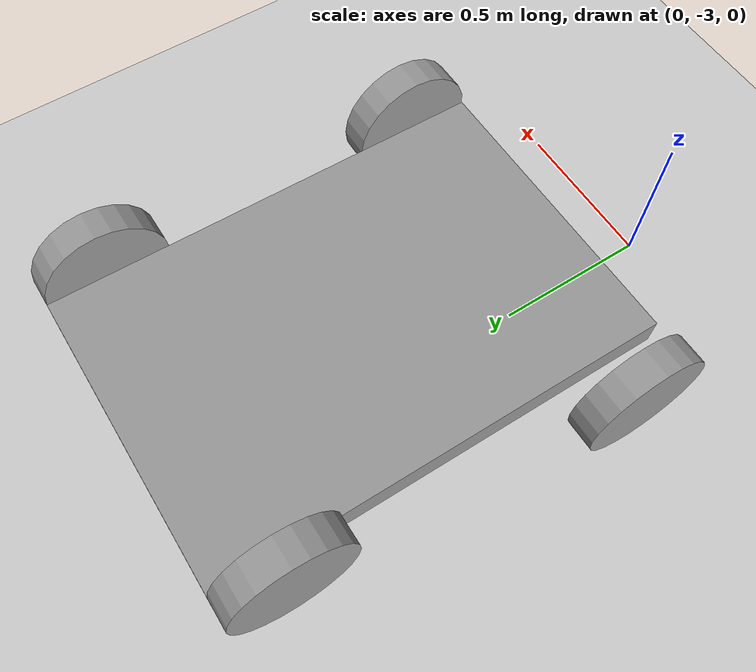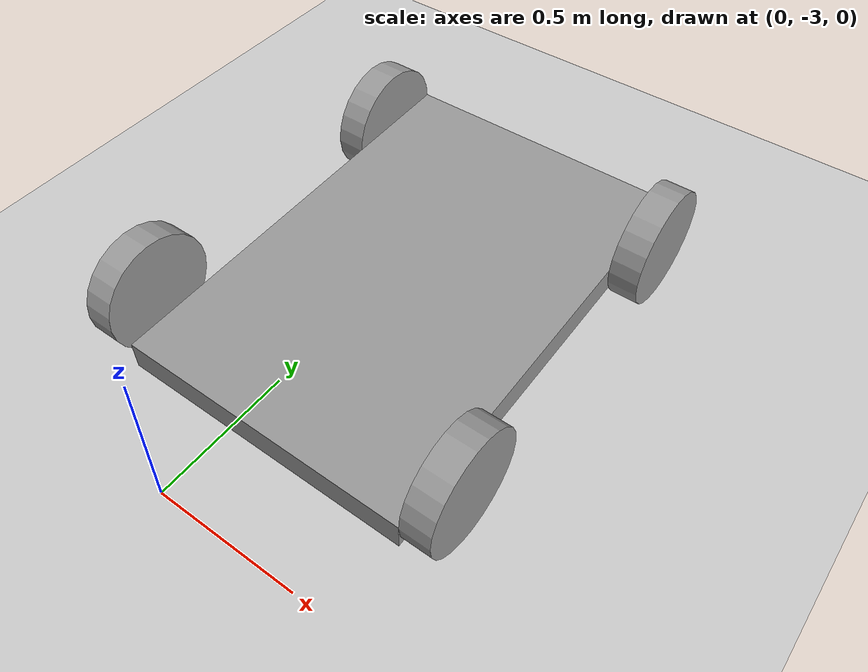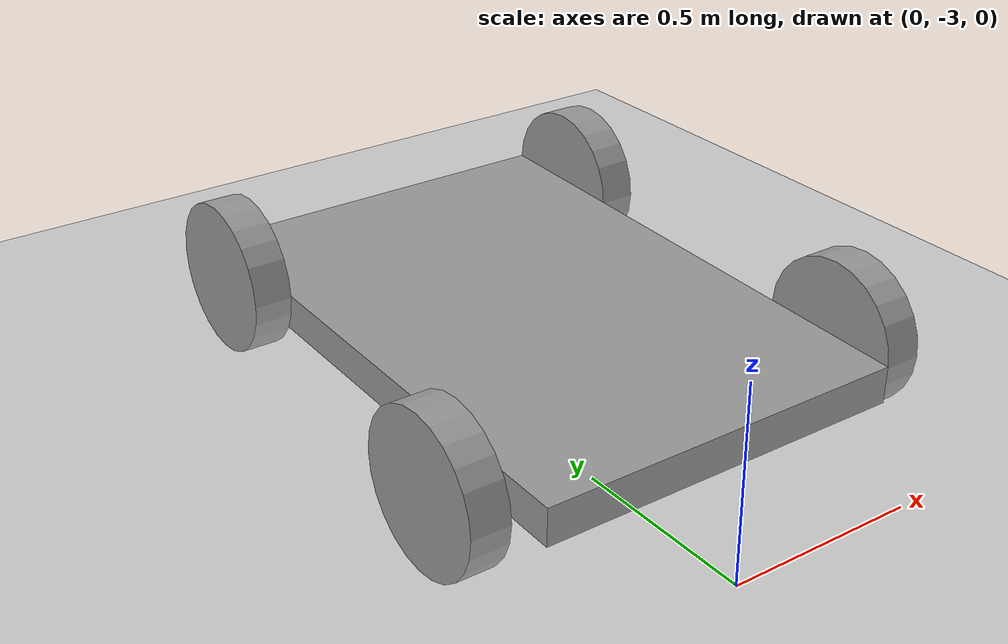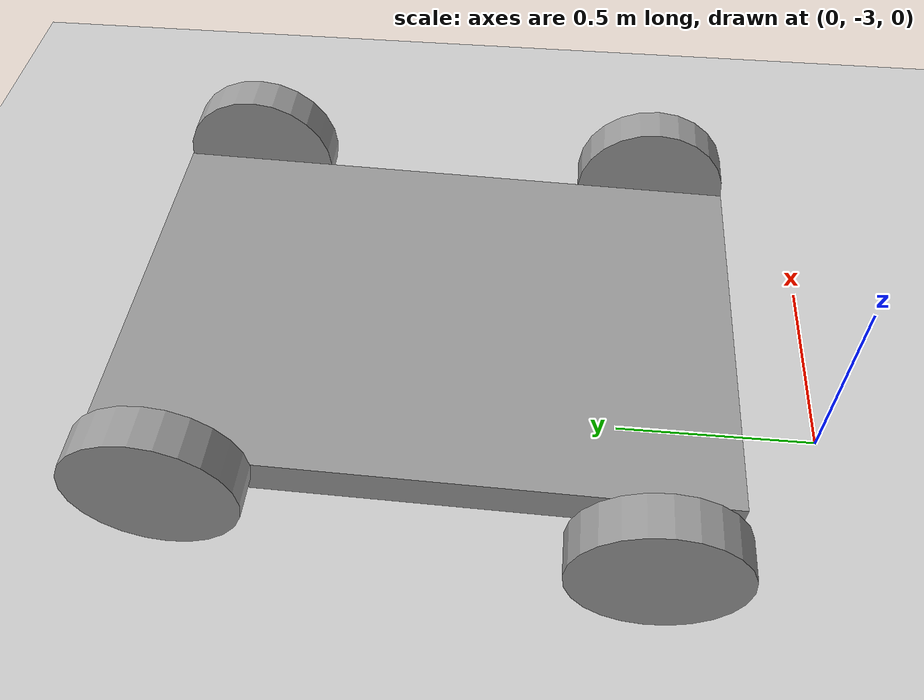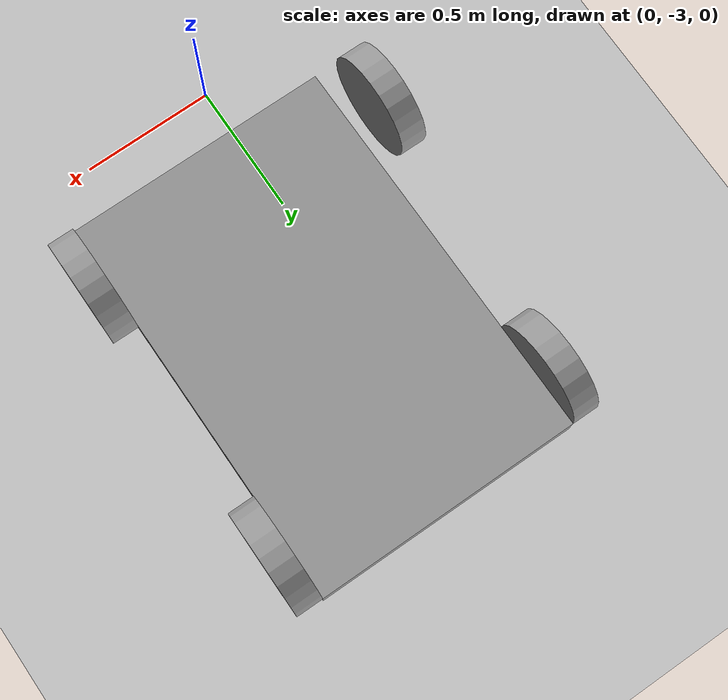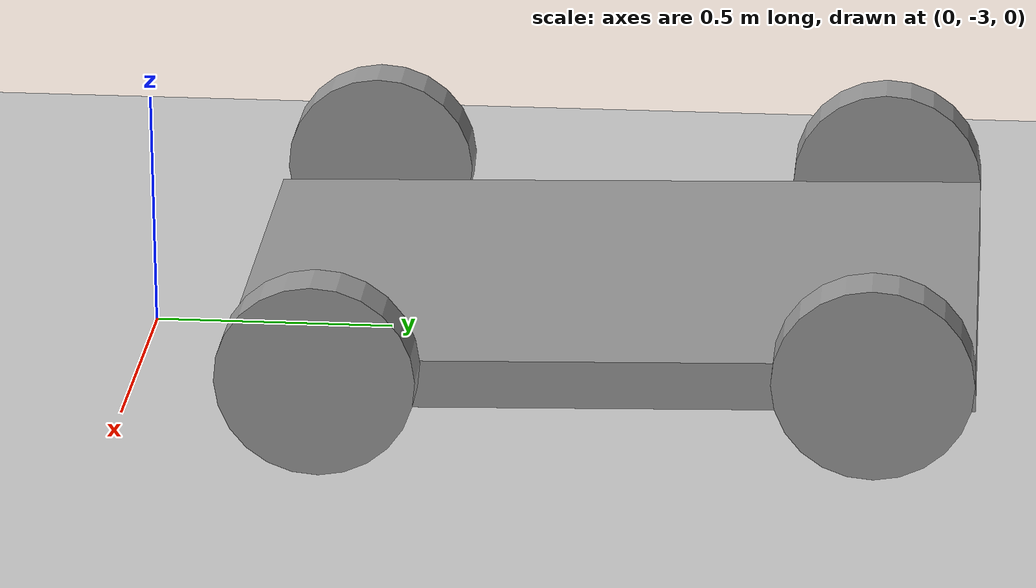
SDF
<sdf version="1.6">
 <world name="default">
  <model name="ground_plane">
   <static>1</static>
   <link name="link">
    <collision name="collision">
     <geometry><plane><normal>0 0 1</normal><size>100 100</size></plane></geometry>
     <surface>
      <contact><collide_bitmask>65535</collide_bitmask></contact>
      <friction><ode><mu>100</mu><mu2>50</mu2></ode></friction>
     </surface>
    </collision>
    <visual name="visual">
     <cast_shadows>0</cast_shadows>
     <geometry><plane><normal>0 0 1</normal><size>100 100</size></plane></geometry>
     <material>
      <script><uri>file://media/materials/scripts/gazebo.material</uri><name>Gazebo/Grey</name></script>
     </material>
    </visual>
   </link>
  </model>
  <model name="myBOt_0">
   <link name="link_0">
    <inertial>
     <mass>1</mass>
     <inertia><ixx>0.145833</ixx><ixy>0</ixy><ixz>0</ixz><iyy>0.145833</iyy><iyz>0</iyz><izz>0.125</izz></inertia>
    </inertial>
    <pose>-0.360453 0.261698 0.045 0 -0 0</pose>
    <visual name="visual">
     <pose>0 0 0 0 1.57 0</pose>
     <geometry><cylinder><radius>0.2</radius><length>0.1</length></cylinder></geometry>
     <material>
      <lighting>1</lighting>
      <script><uri>file://media/materials/scripts/gazebo.material</uri><name>Gazebo/Grey</name></script>
      <shader type="vertex"><normal_map>__default__</normal_map></shader>
      <ambient>0.3 0.3 0.3 1</ambient>
      <diffuse>0.7 0.7 0.7 1</diffuse>
      <specular>0.01 0.01 0.01 1</specular>
      <emissive>0 0 0 1</emissive>
     </material>
    </visual>
    <collision name="collision">
     <pose>0 0 0 0 1.57 0</pose>
     <geometry><cylinder><radius>0.2</radius><length>0.1</length></cylinder></geometry>
     <surface>
      <friction>
       <ode><mu>1</mu><mu2>1</mu2><fdir1>0 0 0</fdir1><slip1>0</slip1><slip2>0</slip2></ode>
       <torsional>
        <coefficient>1</coefficient>
        <patch_radius>0</patch_radius>
        <surface_radius>0</surface_radius>
        <use_patch_radius>1</use_patch_radius>
        <ode><slip>0</slip></ode>
       </torsional>
      </friction>
      <bounce><restitution_coefficient>0</restitution_coefficient><threshold>1e+06</threshold></bounce>
      <contact>
       <collide_without_contact>0</collide_without_contact>
       <collide_without_contact_bitmask>1</collide_without_contact_bitmask>
       <collide_bitmask>1</collide_bitmask>
       <ode>
        <soft_cfm>0</soft_cfm>
        <soft_erp>0.2</soft_erp>
        <kp>1e+13</kp>
        <kd>1</kd>
        <max_vel>0.01</max_vel>
        <min_depth>0</min_depth>
       </ode>
       <bullet>
        <split_impulse>1</split_impulse>
        <split_impulse_penetration_threshold>-0.01</split_impulse_penetration_threshold>
        <soft_cfm>0</soft_cfm>
        <soft_erp>0.2</soft_erp>
        <kp>1e+13</kp>
        <kd>1</kd>
       </bullet>
      </contact>
     </surface>
    </collision>
   </link>
   <link name="link_0_clone">
    <inertial>
     <mass>1</mass>
     <inertia><ixx>0.145833</ixx><ixy>0</ixy><ixz>0</ixz><iyy>0.145833</iyy><iyz>0</iyz><izz>0.125</izz></inertia>
    </inertial>
    <pose>-0.270612 1.3617 0.045 0 -0 0</pose>
    <visual name="visual">
     <pose>0 0 0 0 1.57 0</pose>
     <geometry><cylinder><radius>0.2</radius><length>0.1</length></cylinder></geometry>
     <material>
      <lighting>1</lighting>
      <script><uri>file://media/materials/scripts/gazebo.material</uri><name>Gazebo/Grey</name></script>
      <shader type="vertex"><normal_map>__default__</normal_map></shader>
      <ambient>0.3 0.3 0.3 1</ambient>
      <diffuse>0.7 0.7 0.7 1</diffuse>
      <specular>0.01 0.01 0.01 1</specular>
      <emissive>0 0 0 1</emissive>
     </material>
    </visual>
    <collision name="collision">
     <pose>0 0 0 0 1.57 0</pose>
     <geometry><cylinder><radius>0.2</radius><length>0.1</length></cylinder></geometry>
     <surface>
      <friction>
       <ode><mu>1</mu><mu2>1</mu2><fdir1>0 0 0</fdir1><slip1>0</slip1><slip2>0</slip2></ode>
       <torsional>
        <coefficient>1</coefficient>
        <patch_radius>0</patch_radius>
        <surface_radius>0</surface_radius>
        <use_patch_radius>1</use_patch_radius>
        <ode><slip>0</slip></ode>
       </torsional>
      </friction>
      <bounce><restitution_coefficient>0</restitution_coefficient><threshold>1e+06</threshold></bounce>
      <contact>
       <collide_without_contact>0</collide_without_contact>
       <collide_without_contact_bitmask>1</collide_without_contact_bitmask>
       <collide_bitmask>1</collide_bitmask>
       <ode>
        <soft_cfm>0</soft_cfm>
        <soft_erp>0.2</soft_erp>
        <kp>1e+13</kp>
        <kd>1</kd>
        <max_vel>0.01</max_vel>
        <min_depth>0</min_depth>
       </ode>
       <bullet>
        <split_impulse>1</split_impulse>
        <split_impulse_penetration_threshold>-0.01</split_impulse_penetration_threshold>
        <soft_cfm>0</soft_cfm>
        <soft_erp>0.2</soft_erp>
        <kp>1e+13</kp>
        <kd>1</kd>
       </bullet>
      </contact>
     </surface>
    </collision>
   </link>
   <link name="link_0_clone_clone">
    <inertial>
     <mass>1</mass>
     <inertia><ixx>0.145833</ixx><ixy>0</ixy><ixz>0</ixz><iyy>0.145833</iyy><iyz>0</iyz><izz>0.125</izz></inertia>
    </inertial>
    <pose>0.829706 1.3617 0.045 0 -0 0</pose>
    <visual name="visual">
     <pose>0 0 0 0 1.57 0</pose>
     <geometry><cylinder><radius>0.2</radius><length>0.1</length></cylinder></geometry>
     <material>
      <lighting>1</lighting>
      <script><uri>file://media/materials/scripts/gazebo.material</uri><name>Gazebo/Grey</name></script>
      <shader type="vertex"><normal_map>__default__</normal_map></shader>
      <ambient>0.3 0.3 0.3 1</ambient>
      <diffuse>0.7 0.7 0.7 1</diffuse>
      <specular>0.01 0.01 0.01 1</specular>
      <emissive>0 0 0 1</emissive>
     </material>
    </visual>
    <collision name="collision">
     <pose>0 0 0 0 1.57 0</pose>
     <geometry><cylinder><radius>0.2</radius><length>0.1</length></cylinder></geometry>
     <surface>
      <friction>
       <ode><mu>1</mu><mu2>1</mu2><fdir1>0 0 0</fdir1><slip1>0</slip1><slip2>0</slip2></ode>
       <torsional>
        <coefficient>1</coefficient>
        <patch_radius>0</patch_radius>
        <surface_radius>0</surface_radius>
        <use_patch_radius>1</use_patch_radius>
        <ode><slip>0</slip></ode>
       </torsional>
      </friction>
      <bounce><restitution_coefficient>0</restitution_coefficient><threshold>1e+06</threshold></bounce>
      <contact>
       <collide_without_contact>0</collide_without_contact>
       <collide_without_contact_bitmask>1</collide_without_contact_bitmask>
       <collide_bitmask>1</collide_bitmask>
       <ode>
        <soft_cfm>0</soft_cfm>
        <soft_erp>0.2</soft_erp>
        <kp>1e+13</kp>
        <kd>1</kd>
        <max_vel>0.01</max_vel>
        <min_depth>0</min_depth>
       </ode>
       <bullet>
        <split_impulse>1</split_impulse>
        <split_impulse_penetration_threshold>-0.01</split_impulse_penetration_threshold>
        <soft_cfm>0</soft_cfm>
        <soft_erp>0.2</soft_erp>
        <kp>1e+13</kp>
        <kd>1</kd>
       </bullet>
      </contact>
     </surface>
    </collision>
   </link>
   <link name="link_0_clone_clone_clone">
    <inertial>
     <mass>1</mass>
     <inertia><ixx>0.145833</ixx><ixy>0</ixy><ixz>0</ixz><iyy>0.145833</iyy><iyz>0</iyz><izz>0.125</izz></inertia>
    </inertial>
    <pose>0.829706 0.261698 0.045 0 -0 0</pose>
    <visual name="visual">
     <pose>0 0 0 0 1.57 0</pose>
     <geometry><cylinder><radius>0.2</radius><length>0.1</length></cylinder></geometry>
     <material>
      <lighting>1</lighting>
      <script><uri>file://media/materials/scripts/gazebo.material</uri><name>Gazebo/Grey</name></script>
      <shader type="vertex"><normal_map>__default__</normal_map></shader>
      <ambient>0.3 0.3 0.3 1</ambient>
      <diffuse>0.7 0.7 0.7 1</diffuse>
      <specular>0.01 0.01 0.01 1</specular>
      <emissive>0 0 0 1</emissive>
     </material>
    </visual>
    <collision name="collision">
     <pose>0 0 0 0 1.57 0</pose>
     <geometry><cylinder><radius>0.2</radius><length>0.1</length></cylinder></geometry>
     <surface>
      <friction>
       <ode><mu>1</mu><mu2>1</mu2><fdir1>0 0 0</fdir1><slip1>0</slip1><slip2>0</slip2></ode>
       <torsional>
        <coefficient>1</coefficient>
        <patch_radius>0</patch_radius>
        <surface_radius>0</surface_radius>
        <use_patch_radius>1</use_patch_radius>
        <ode><slip>0</slip></ode>
       </torsional>
      </friction>
      <bounce><restitution_coefficient>0</restitution_coefficient><threshold>1e+06</threshold></bounce>
      <contact>
       <collide_without_contact>0</collide_without_contact>
       <collide_without_contact_bitmask>1</collide_without_contact_bitmask>
       <collide_bitmask>1</collide_bitmask>
       <ode>
        <soft_cfm>0</soft_cfm>
        <soft_erp>0.2</soft_erp>
        <kp>1e+13</kp>
        <kd>1</kd>
        <max_vel>0.01</max_vel>
        <min_depth>0</min_depth>
       </ode>
       <bullet>
        <split_impulse>1</split_impulse>
        <split_impulse_penetration_threshold>-0.01</split_impulse_penetration_threshold>
        <soft_cfm>0</soft_cfm>
        <soft_erp>0.2</soft_erp>
        <kp>1e+13</kp>
        <kd>1</kd>
       </bullet>
      </contact>
     </surface>
    </collision>
   </link>
   <link name="link_1">
    <inertial>
     <mass>1</mass>
     <inertia>
      <ixx>0.166667</ixx>
      <ixy>0</ixy>
      <ixz>0</ixz>
      <iyy>0.166667</iyy>
      <iyz>0</iyz>
      <izz>0.166667</izz>
     </inertia>
    </inertial>
    <pose>0.279547 0.811698 0 0 -0 0</pose>
    <visual name="visual">
     <geometry><box><size>1 1.5 0.1</size></box></geometry>
     <material>
      <lighting>1</lighting>
      <script><uri>file://media/materials/scripts/gazebo.material</uri><name>Gazebo/Grey</name></script>
      <shader type="vertex"><normal_map>__default__</normal_map></shader>
      <ambient>0.3 0.3 0.3 1</ambient>
      <diffuse>0.7 0.7 0.7 1</diffuse>
      <specular>0.01 0.01 0.01 1</specular>
      <emissive>0 0 0 1</emissive>
     </material>
    </visual>
    <collision name="collision">
     <geometry><box><size>1 1.5 0.1</size></box></geometry>
     <surface>
      <friction>
       <ode><mu>1</mu><mu2>1</mu2><fdir1>0 0 0</fdir1><slip1>0</slip1><slip2>0</slip2></ode>
       <torsional>
        <coefficient>1</coefficient>
        <patch_radius>0</patch_radius>
        <surface_radius>0</surface_radius>
        <use_patch_radius>1</use_patch_radius>
        <ode><slip>0</slip></ode>
       </torsional>
      </friction>
      <bounce><restitution_coefficient>0</restitution_coefficient><threshold>1e+06</threshold></bounce>
      <contact>
       <collide_without_contact>0</collide_without_contact>
       <collide_without_contact_bitmask>1</collide_without_contact_bitmask>
       <collide_bitmask>1</collide_bitmask>
       <ode>
        <soft_cfm>0</soft_cfm>
        <soft_erp>0.2</soft_erp>
        <kp>1e+13</kp>
        <kd>1</kd>
        <max_vel>0.01</max_vel>
        <min_depth>0</min_depth>
       </ode>
       <bullet>
        <split_impulse>1</split_impulse>
        <split_impulse_penetration_threshold>-0.01</split_impulse_penetration_threshold>
        <soft_cfm>0</soft_cfm>
        <soft_erp>0.2</soft_erp>
        <kp>1e+13</kp>
        <kd>1</kd>
       </bullet>
      </contact>
     </surface>
    </collision>
   </link>
   <joint name="link_1_JOINT_0" type="revolute">
    <parent>link_1</parent>
    <child>link_0</child>
    <axis>
     <xyz>1 0 0</xyz>
     <use_parent_model_frame>0</use_parent_model_frame>
     <limit>
      <lower>-1.79769e+308</lower>
      <upper>1.79769e+308</upper>
      <effort>-1</effort>
      <velocity>-1</velocity>
     </limit>
     <dynamics>
      <spring_reference>0</spring_reference>
      <spring_stiffness>0</spring_stiffness>
      <damping>0</damping>
     </dynamics>
    </axis>
    <physics>
     <ode><limit><cfm>0</cfm><erp>0.2</erp></limit><suspension><cfm>0</cfm><erp>0.2</erp></suspension></ode>
    </physics>
   </joint>
   <joint name="link_1_JOINT_1" type="revolute">
    <parent>link_1</parent>
    <child>link_0_clone</child>
    <axis>
     <xyz>1 0 0</xyz>
     <use_parent_model_frame>0</use_parent_model_frame>
     <limit>
      <lower>-1.79769e+308</lower>
      <upper>1.79769e+308</upper>
      <effort>-1</effort>
      <velocity>-1</velocity>
     </limit>
     <dynamics>
      <spring_reference>0</spring_reference>
      <spring_stiffness>0</spring_stiffness>
      <damping>0</damping>
     </dynamics>
    </axis>
    <physics>
     <ode><limit><cfm>0</cfm><erp>0.2</erp></limit><suspension><cfm>0</cfm><erp>0.2</erp></suspension></ode>
    </physics>
   </joint>
   <joint name="link_1_JOINT_2" type="revolute">
    <parent>link_1</parent>
    <child>link_0_clone_clone_clone</child>
    <axis>
     <xyz>1 0 0</xyz>
     <use_parent_model_frame>0</use_parent_model_frame>
     <limit>
      <lower>-1.79769e+308</lower>
      <upper>1.79769e+308</upper>
      <effort>-1</effort>
      <velocity>-1</velocity>
     </limit>
     <dynamics>
      <spring_reference>0</spring_reference>
      <spring_stiffness>0</spring_stiffness>
      <damping>0</damping>
     </dynamics>
    </axis>
    <physics>
     <ode><limit><cfm>0</cfm><erp>0.2</erp></limit><suspension><cfm>0</cfm><erp>0.2</erp></suspension></ode>
    </physics>
   </joint>
   <joint name="link_1_JOINT_3" type="revolute">
    <parent>link_1</parent>
    <child>link_0_clone_clone</child>
    <axis>
     <xyz>1 0 0</xyz>
     <use_parent_model_frame>0</use_parent_model_frame>
     <limit>
      <lower>-1.79769e+308</lower>
      <upper>1.79769e+308</upper>
      <effort>-1</effort>
      <velocity>-1</velocity>
     </limit>
     <dynamics>
      <spring_reference>0</spring_reference>
      <spring_stiffness>0</spring_stiffness>
      <damping>0</damping>
     </dynamics>
    </axis>
    <physics>
     <ode><limit><cfm>0</cfm><erp>0.2</erp></limit><suspension><cfm>0</cfm><erp>0.2</erp></suspension></ode>
    </physics>
   </joint>
   <static>0</static>
   <pose>-0.105196 -2.82865 0.148273 0.025918 -0 0.000348</pose>
  </model>
  <model name="MyBall">
   <pose>5.38541 -6.23691 0.5 0 -0 0</pose>
   <scale>1 1 1</scale>
   <link name="link_0">
    <pose>5.38541 -6.23691 0.5 0 -0 0</pose>
    <velocity>0 0 0 0 -0 0</velocity>
    <acceleration>0 0 0 0 -0 0</acceleration>
    <wrench>0 0 0 0 -0 0</wrench>
   </link>
  </model>
 </world>
</sdf>
